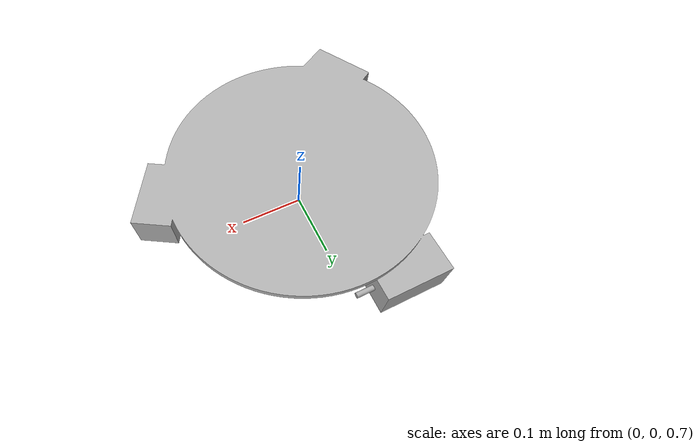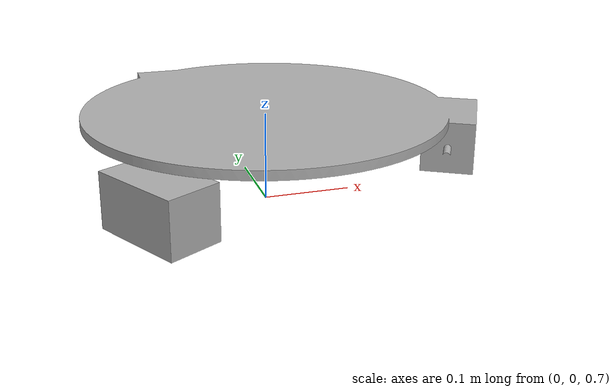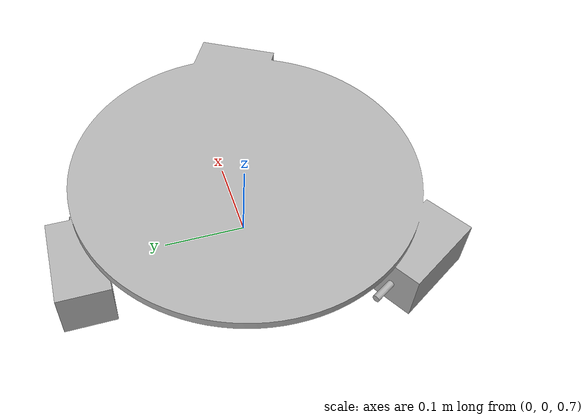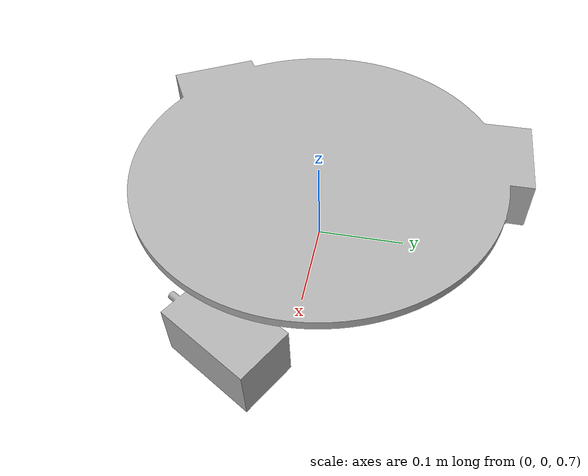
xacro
<?xml version="1.0" ?>
<robot name="SCRAB" xmlns:xacro="http://www.ros.org/wiki/xacro">

<xacro:include filename="$(find SCRAB_description)/urdf/materials.xacro" />
<xacro:include filename="$(find SCRAB_description)/urdf/SCRAB.trans" />
<xacro:include filename="$(find SCRAB_description)/urdf/SCRAB.gazebo" />
<link name="base_link">
  <inertial>
    <origin xyz="0.009486366114388127 -0.005381615869041012 0.7236298129248437" rpy="0 0 0"/>
    <mass value="6.957372489287497"/>
    <inertia ixx="0.351652" iyy="0.357154" izz="0.21618" ixy="0.004721" iyz="-0.022224" ixz="0.03918"/>
  </inertial>
  <visual>
    <origin xyz="0 0 0" rpy="0 0 0"/>
    <geometry>
      <mesh filename="package://SCRAB_description/meshes/base_link.stl" scale="0.001 0.001 0.001"/>
    </geometry>
    <material name="silver"/>
  </visual>
  <collision>
    <origin xyz="0 0 0" rpy="0 0 0"/>
    <geometry>
      <mesh filename="package://SCRAB_description/meshes/base_link.stl" scale="0.001 0.001 0.001"/>
    </geometry>
  </collision>
</link>

</robot>

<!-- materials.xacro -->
<robot name="SCRAB" xmlns:xacro="http://www.ros.org/wiki/xacro" >

<material name="silver">
  <color rgba="0.700 0.700 0.700 1.000"/>
</material>

</robot>

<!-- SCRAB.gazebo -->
<robot name="SCRAB" xmlns:xacro="http://www.ros.org/wiki/xacro" >

<xacro:property name="body_color" value="Gazebo/Silver" />

<gazebo>
  <plugin name="control" filename="libgazebo_ros_control.so"/>
</gazebo>
<gazebo reference="base_link">
  <material>${body_color}</material>
  <mu1>0.2</mu1>
  <mu2>0.2</mu2>
  <selfCollide>true</selfCollide>
  <gravity>true</gravity>
</gazebo>

</robot>
